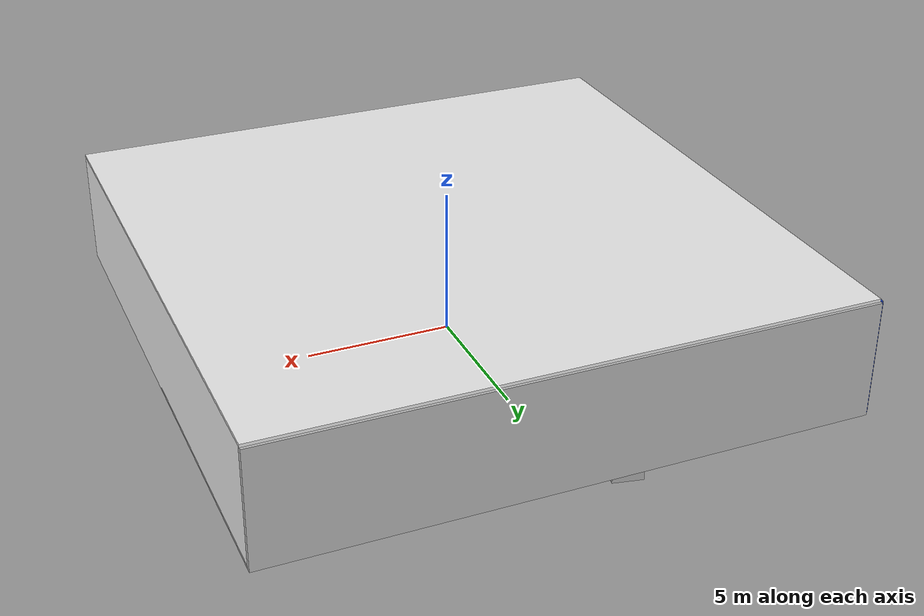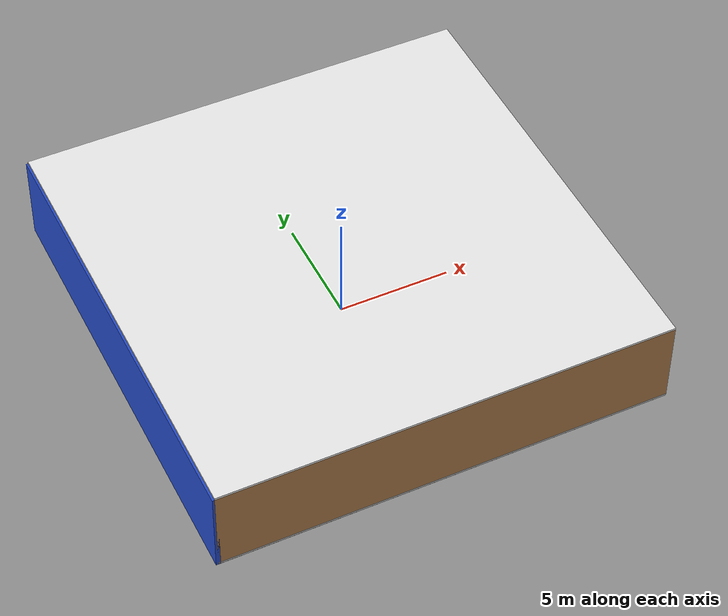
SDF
<sdf version="1.4">
 <world name="default">
  <physics type="ode">
   <max_step_size>0.001</max_step_size>
   <real_time_factor>1</real_time_factor>
   <real_time_update_rate>1000</real_time_update_rate>
   <gravity>0 0 -9.8</gravity>
  </physics>
  <scene><ambient>0.4 0.4 0.4 1</ambient><background>0.7 0.7 0.7 1</background><shadows>1</shadows></scene>
  <model name="Surrounding">
   <static>1</static>
   <link name="Ceiling">
    <collision name="Ceiling_Collision"><geometry><box><size>20 20 0.1</size></box></geometry></collision>
    <visual name="Ceiling_Visual">
     <geometry><box><size>20 20 0.1</size></box></geometry>
     <material>
      <script><uri>file://media/materials/scripts/gazebo.material</uri><name>Gazebo/WhiteGlow</name></script>
     </material>
    </visual>
    <pose>0 0 4.05 0 0 0</pose>
   </link>
   <link name="Wall_South">
    <collision name="Wall_South_Collision">
     <geometry><box><size>20 0 4</size></box></geometry>
     <pose>0 0 2 0 -0 0</pose>
    </collision>
    <visual name="Wall_South_Visual">
     <pose>0 0 2 0 -0 0</pose>
     <geometry><box><size>20 0 4</size></box></geometry>
     <material>
      <script><uri>file://media/materials/scripts/gazebo.material</uri><name>Gazebo/Wood</name></script>
     </material>
    </visual>
    <velocity_decay><linear>0</linear><angular>0</angular></velocity_decay>
    <pose>0 -10 0 0 -0 0</pose>
   </link>
   <link name="Wall_East">
    <collision name="Wall_21_Collision">
     <geometry><box><size>20 0 4</size></box></geometry>
     <pose>0 0 2 0 -0 0</pose>
    </collision>
    <visual name="Wall_21_Visual">
     <pose>0 0 2 0 -0 0</pose>
     <geometry><box><size>20 0 4</size></box></geometry>
     <material>
      <script><uri>file://media/materials/scripts/gazebo.material</uri><name>Gazebo/WhiteGlow</name></script>
     </material>
    </visual>
    <velocity_decay><linear>0</linear><angular>0</angular></velocity_decay>
    <pose>10 0 0 0 -0 1.5708</pose>
   </link>
   <link name="Wall_North">
    <collision name="Wall_22_Collision">
     <geometry><box><size>20 0.2 4</size></box></geometry>
     <pose>0 0 2 0 -0 0</pose>
    </collision>
    <visual name="Wall_22_Visual">
     <pose>0 0 2 0 -0 0</pose>
     <geometry><box><size>20 0.2 4</size></box></geometry>
     <material>
      <script><uri>file://media/materials/scripts/gazebo.material</uri><name>Gazebo/JointAnchor</name></script>
     </material>
    </visual>
    <velocity_decay><linear>0</linear><angular>0</angular></velocity_decay>
    <pose>0 10 0 0 -0 0</pose>
   </link>
   <link name="Wall_West">
    <collision name="Wall_23_Collision">
     <geometry><box><size>20 0.2 4</size></box></geometry>
     <pose>0 0 2 0 -0 0</pose>
    </collision>
    <visual name="Wall_23_Visual">
     <pose>0 0 2 0 -0 0</pose>
     <geometry><box><size>20 0.2 4</size></box></geometry>
     <material>
      <script><uri>file://media/materials/scripts/gazebo.material</uri><name>Gazebo/Blue</name></script>
     </material>
    </visual>
    <velocity_decay><linear>0</linear><angular>0</angular></velocity_decay>
    <pose>-10 0 0 0 0 -1.5708</pose>
   </link>
   <link name="Ground_link">
    <collision name="collision">
     <pose>0 0 .05 0 -0 0</pose>
     <geometry><box><size>20 20 0.1</size></box></geometry>
    </collision>
    <visual name="visual">
     <pose>0 0 .05 0 -0 0</pose>
     <geometry><box><size>20 20 0.1</size></box></geometry>
     <material>
      <script><uri>file://media/materials/scripts/gazebo.material</uri><name>Gazebo/Pioneer2Body</name></script>
     </material>
    </visual>
   </link>
   <static>1</static>
  </model>
  <spherical_coordinates>
   <surface_model>EARTH_WGS84</surface_model>
   <latitude_deg>0</latitude_deg>
   <longitude_deg>0</longitude_deg>
   <elevation>0</elevation>
   <heading_deg>0</heading_deg>
  </spherical_coordinates>
  <light name="lightball_0" type="diffuse">
   <diffuse>0.8 0.8 0.8 1</diffuse>
   <specular>0.2 0.2 0.2 1</specular>
   <attenuation>
    <range>100</range>
    <constant>0.7</constant>
    <linear>0.01</linear>
    <quadratic>0.001</quadratic>
   </attenuation>
   <direction>-0.5 0.1 -0.9</direction>
   <pose>2.8899563259 -7.87908015997 1.66367442733 0 0 0</pose>
  </light>
  <light name="lightball_1" type="diffuse">
   <diffuse>0.8 0.8 0.8 1</diffuse>
   <specular>0.2 0.2 0.2 1</specular>
   <attenuation>
    <range>100</range>
    <constant>0.7</constant>
    <linear>0.01</linear>
    <quadratic>0.001</quadratic>
   </attenuation>
   <direction>-0.5 0.1 -0.9</direction>
   <pose>-1.91880252218 -8.46196919706 3.8043350541 0 0 0</pose>
  </light>
  <light name="lightball_2" type="diffuse">
   <diffuse>0.8 0.8 0.8 1</diffuse>
   <specular>0.2 0.2 0.2 1</specular>
   <attenuation>
    <range>100</range>
    <constant>0.7</constant>
    <linear>0.01</linear>
    <quadratic>0.001</quadratic>
   </attenuation>
   <direction>-0.5 0.1 -0.9</direction>
   <pose>-2.90457886335 -6.89906473709 1.0459062265 0 0 0</pose>
  </light>
  <light name="lightball_3" type="diffuse">
   <diffuse>0.8 0.8 0.8 1</diffuse>
   <specular>0.2 0.2 0.2 1</specular>
   <attenuation>
    <range>100</range>
    <constant>0.7</constant>
    <linear>0.01</linear>
    <quadratic>0.001</quadratic>
   </attenuation>
   <direction>-0.5 0.1 -0.9</direction>
   <pose>2.18439074996 6.78125500685 3.75226831386 0 0 0</pose>
  </light>
  <light name="lightball_4" type="diffuse">
   <diffuse>0.8 0.8 0.8 1</diffuse>
   <specular>0.2 0.2 0.2 1</specular>
   <attenuation>
    <range>100</range>
    <constant>0.7</constant>
    <linear>0.01</linear>
    <quadratic>0.001</quadratic>
   </attenuation>
   <direction>-0.5 0.1 -0.9</direction>
   <pose>6.84496975952 3.20914427993 2.38008018597 0 0 0</pose>
  </light>
  <light name="lightball_5" type="diffuse">
   <diffuse>0.8 0.8 0.8 1</diffuse>
   <specular>0.2 0.2 0.2 1</specular>
   <attenuation>
    <range>100</range>
    <constant>0.7</constant>
    <linear>0.01</linear>
    <quadratic>0.001</quadratic>
   </attenuation>
   <direction>-0.5 0.1 -0.9</direction>
   <pose>8.97351186525 2.21449656968 2.06999276049 0 0 0</pose>
  </light>
  <include>
   <uri>model://construction_cone</uri>
   <pose>-5.42967001212 6.42876426139 0 0 0 0.628490861415</pose>
  </include>
  <include>
   <uri>model://textured_shapes</uri>
   <pose>-2.17980522988 7.78363403705 0 0 0 2.94150770857</pose>
  </include>
  <include>
   <uri>model://construction_cone</uri>
   <pose>1.7279250037 -7.15512398183 0 0 0 0.84190064615</pose>
  </include>
  <include>
   <uri>model://textured_shapes</uri>
   <pose>4.64972608699 0.644373496723 0 0 0 2.83413113862</pose>
  </include>
  <include><uri>model://cabinet</uri><pose>8.02938788902 -5.1048023408 0 0 0 2.43625878517</pose></include>
  <include><uri>model://cabinet</uri><pose>8.26581509237 3.73842899368 0 0 0 0.7333100502</pose></include>
 </world>
</sdf>

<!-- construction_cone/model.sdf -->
<sdf version="1.5">
  <model name="Construction Cone">
    <link name="link">
      <collision name="collision">
        <geometry>
          <mesh>
            <scale>10 10 10</scale>
            <uri>file://isr-testbed/construction_cone/meshes/construction_cone.dae</uri>
          </mesh>
        </geometry>
      </collision>
      <visual name="visual">
        <geometry>
          <mesh>
            <scale>10 10 10</scale>
            <uri>file://isr-testbed/construction_cone/meshes/construction_cone.dae</uri>
          </mesh>
        </geometry>
      </visual>
    </link>
  </model>
</sdf>

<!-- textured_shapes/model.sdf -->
<sdf version="1.6">
  <model name="textured_shapes">
    <pose>0 0 0.5 0 0 0</pose>
    <link name="box">
      <pose>0 -1.5 0 0 0 0</pose>
      <collision name="collision">
        <geometry>
          <box>
            <size>1 1 1</size>
          </box>
        </geometry>
      </collision>
      <visual name="visual">
        <geometry>
          <box>
            <size>1 1 1</size>
          </box>
        </geometry>
        <material>
          <script>
            <uri>model://../model_source/models/textured_shapes/materials/scripts</uri>
            <uri>model://../model_source/models/textured_shapes/materials/textures</uri>
            <name>TexturedShape/Squares</name>
          </script>
        </material>
      </visual>
    </link>
    <link name="sphere">
      <collision name="collision">
        <geometry>
          <sphere>
            <radius>0.5</radius>
          </sphere>
        </geometry>
      </collision>
      <visual name="visual">
        <geometry>
          <sphere>
            <radius>0.5</radius>
          </sphere>
        </geometry>
        <material>
          <script>
            <uri>model://../model_source/models/textured_shapes/materials/scripts</uri>
            <uri>model://../model_source/models/textured_shapes/materials/textures</uri>
            <name>TexturedShape/Squares</name>
          </script>
        </material>
      </visual>
    </link>
    <link name="cylinder">
      <pose>0 1.5 0 0 0 0</pose>
      <collision name="collision">
        <geometry>
          <cylinder>
            <radius>0.5</radius>
            <length>1</length>
          </cylinder>
        </geometry>
      </collision>
      <visual name="visual">
        <geometry>
          <cylinder>
            <radius>0.5</radius>
            <length>1</length>
          </cylinder>
        </geometry>
        <material>
          <script>
            <uri>model://../model_source/models/textured_shapes/materials/scripts</uri>
            <uri>model://../model_source/models/textured_shapes/materials/textures</uri>
            <name>TexturedShape/Squares</name>
          </script>
        </material>
      </visual>
    </link>
  </model>
</sdf>

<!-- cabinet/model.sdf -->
<sdf version="1.5">
  <model name="cabinet">
    <static>true</static>
    <link name="cabinet_bottom_plate">
      <inertial>
        <pose>0 0 -1 0 0 0</pose>
        <inertia>
          <ixx>2.050000</ixx>
          <ixy>0</ixy>
          <ixz>0</ixz>
          <iyy>2.050000</iyy>
          <iyz>0</iyz>
          <izz>2.050000</izz>
        </inertia>
        <mass>25.000000</mass>
      </inertial>
      <collision name="cabinet_bottom_plate_geom">
        <pose>0 0 0.010000 0 0 0</pose>
        <geometry>
          <box>
            <size>0.450000 0.450000 0.020000</size>
          </box>
        </geometry>
      </collision>
      <visual name="cabinet_bottom_plate_geom_visual">
        <pose>0 0 0.010000 0 0 0</pose>
        <geometry>
          <box>
            <size>0.450000 0.450000 0.020000</size>
          </box>
        </geometry>
        <material>
          <script>
            <uri>model://media/materials/scripts/gazebo.material</uri>
            <name>Gazebo/Wood</name>
          </script>
        </material>
      </visual>
      <collision name="cabinet_bottom_plate_geom_cabinet_back_plate">
        <pose>0.235000 0 0.510000 0 0 0</pose>
        <geometry>
          <box>
            <size>0.020000 0.450000 1.020000</size>
          </box>
        </geometry>
      </collision>
      <visual name="cabinet_bottom_plate_geom_cabinet_back_plate_visual">
        <pose>0.235000 0 0.510000 0 0 0</pose>
        <geometry>
          <box>
            <size>0.020000 0.450000 1.020000</size>
          </box>
        </geometry>
        <material>
          <script>
            <uri>model://media/materials/scripts/gazebo.material</uri>
            <name>Gazebo/Wood</name>
          </script>
        </material>
      </visual>
      <collision name="cabinet_bottom_plate_geom_cabinet_left_plate">
        <pose>0 0.235000 0.510000 0 0 0</pose>
        <geometry>
          <box>
            <size>0.450000 0.020000 1.020000</size>
          </box>
        </geometry>
      </collision>
      <visual name="cabinet_bottom_plate_geom_cabinet_left_plate_visual">
        <pose>0 0.235000 0.510000 0 0 0</pose>
        <geometry>
          <box>
            <size>0.450000 0.020000 1.020000</size>
          </box>
        </geometry>
        <material>
          <script>
            <uri>model://media/materials/scripts/gazebo.material</uri>
            <name>Gazebo/Wood</name>
          </script>
        </material>
      </visual>
      <collision name="cabinet_bottom_plate_geom_cabinet_middle_plate">
        <pose>0 0 0.510000 0 0 0</pose>
        <geometry>
          <box>
            <size>0.450000 0.450000 0.020000</size>
          </box>
        </geometry>
      </collision>
      <visual name="cabinet_bottom_plate_geom_cabinet_middle_plate_visual">
        <pose>0 0 0.510000 0 0 0</pose>
        <geometry>
          <box>
            <size>0.450000 0.450000 0.020000</size>
          </box>
        </geometry>
        <material>
          <script>
            <uri>model://media/materials/scripts/gazebo.material</uri>
            <name>Gazebo/Wood</name>
          </script>
        </material>
      </visual>
      <collision name="cabinet_bottom_plate_geom_cabinet_right_plate">
        <pose>0 -0.235000 0.510000 0 0 0</pose>
        <geometry>
          <box>
            <size>0.450000 0.020000 1.020000</size>
          </box>
        </geometry>
      </collision>
      <visual name="cabinet_bottom_plate_geom_cabinet_right_plate_visual">
        <pose>0 -0.235000 0.510000 0 0 0</pose>
        <geometry>
          <box>
            <size>0.450000 0.020000 1.020000</size>
          </box>
        </geometry>
        <material>
          <script>
            <uri>model://media/materials/scripts/gazebo.material</uri>
            <name>Gazebo/Wood</name>
          </script>
        </material>
      </visual>
      <collision name="cabinet_bottom_plate_geom_cabinet_top_plate">
        <pose>0 0 1.010000 0 0 0</pose>
        <geometry>
          <box>
            <size>0.450000 0.450000 0.020000</size>
          </box>
        </geometry>
      </collision>
      <visual name="cabinet_bottom_plate_geom_cabinet_top_plate_visual">
        <pose>0 0 1.010000 0 0 0</pose>
        <geometry>
          <box>
            <size>0.450000 0.450000 0.020000</size>
          </box>
        </geometry>
        <material>
          <script>
            <uri>model://media/materials/scripts/gazebo.material</uri>
            <name>Gazebo/Wood</name>
          </script>
        </material>
      </visual>
    </link>
  </model>
</sdf>
